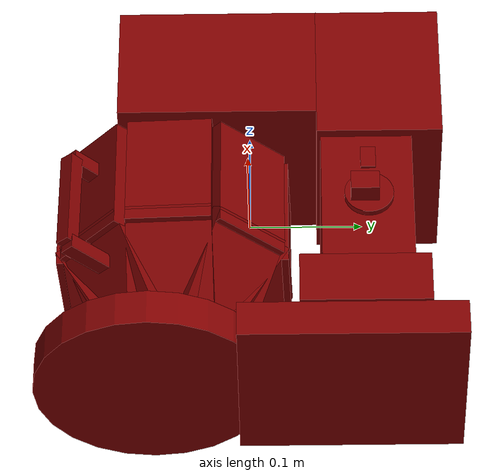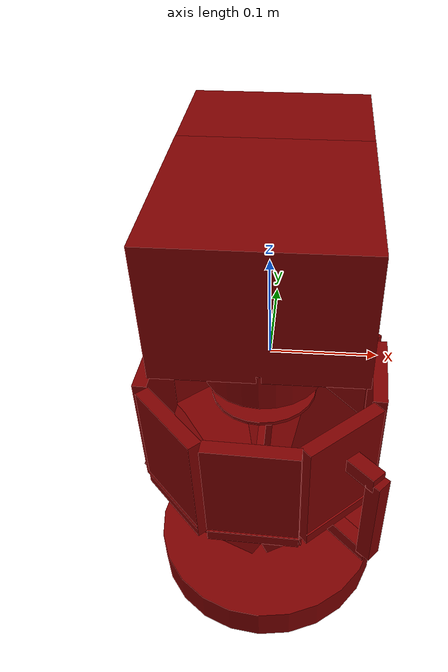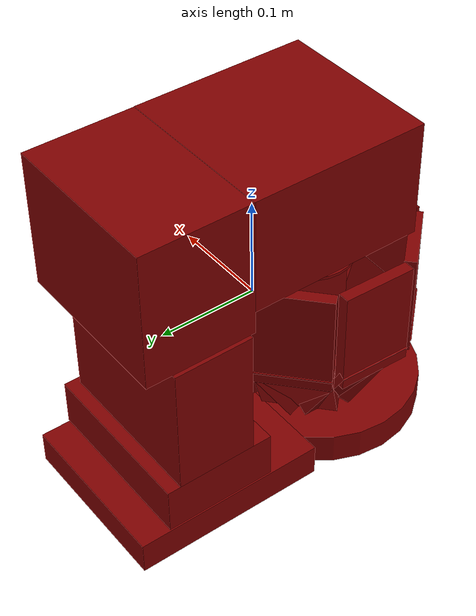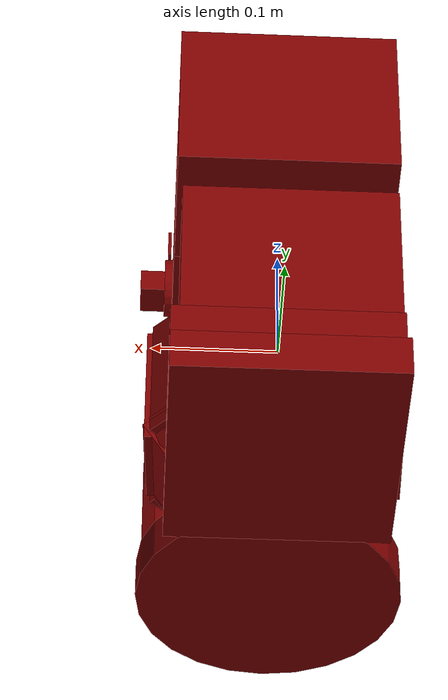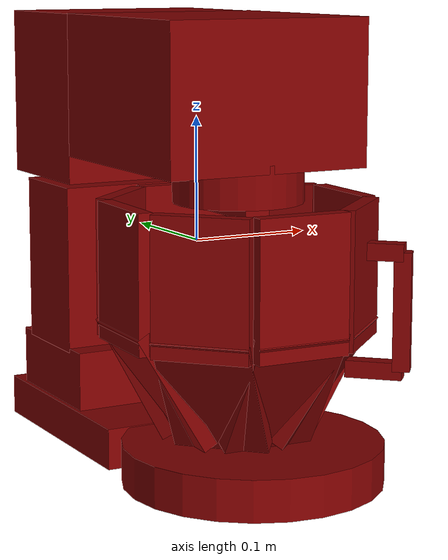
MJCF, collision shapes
<?xml version='1.0' encoding='UTF-8'?>
<mujoco model="model">
  <compiler angle="radian"/>
  <asset>
    <mesh file="visuals/Blade001.obj" name="Blade001_vis"/>
    <mesh file="visuals/Body001.obj" name="Body001_vis"/>
    <mesh file="visuals/Button001.obj" name="Button001_vis"/>
    <mesh file="visuals/Container001.obj" name="Container001_vis"/>
    <mesh file="visuals/Knob001.obj" name="Knob001_vis"/>
    <mesh file="visuals/Lid001.obj" name="Lid001_vis"/>
    <texture file="visuals/T_BC001.png" name="Body001_material" type="2d"/>
    <material name="Body001_material" rgba="1 1 1 1.0" texture="Body001_material" shininess="0.6150577068328857" specular="0.5"/>
    <texture file="visuals/T_BC001.png" name="Button001_material" type="2d"/>
    <material name="Button001_material" rgba="1 1 1 1.0" texture="Button001_material" shininess="0.6150577068328857" specular="0.5"/>
    <texture file="visuals/T_BC001.png" name="Container001_material" type="2d"/>
    <material name="Container001_material" rgba="1 1 1 1.0" texture="Container001_material" shininess="0.6150577068328857" specular="0.5"/>
    <texture file="visuals/T_BC001.png" name="Knob001_material" type="2d"/>
    <material name="Knob001_material" rgba="1 1 1 1.0" texture="Knob001_material" shininess="0.6150577068328857" specular="0.5"/>
    <texture file="visuals/T_BC001.png" name="Lid001_material" type="2d"/>
    <material name="Lid001_material" rgba="1 1 1 1.0" texture="Lid001_material" shininess="0.6150577068328857" specular="0.5"/>
    <texture file="visuals/T_BC001.png" name="Blade001_material" type="2d"/>
    <material name="Blade001_material" rgba="1 1 1 1.0" texture="Blade001_material" shininess="0.6150577068328857" specular="1"/>
  </asset>
  <default>
    <default class="visual">
      <geom conaffinity="0" contype="0" group="1" type="mesh"/>
    </default>
    <default class="collision">
      <geom group="0" rgba="0.5 0 0 0.5"/>
    </default>
    <default class="spawn">
      <geom group="0" rgba="1 1 1 0.5" contype="0" conaffinity="0"/>
      <site group="0" rgba="1 1 1 0.5"/>
    </default>
    <default class="region">
      <geom group="1" conaffinity="0" contype="0" rgba="0 1 0 0"/>
    </default>
  </default>
  <worldbody>
    <body>
      <body name="object">
        <geom mesh="Body001_vis" type="mesh" solimp="0.998 0.998 0.001" solref="0.001 1" density="100" friction="0.95 0.3 0.1" class="visual" material="Body001_material"/>
        <geom class="collision" type="cylinder" pos="0.003460519015789032 -0.0849916860461235 -0.1610846072435379" size="0.10266918689012527 0.016178524121642113" quat="0.7071068286895752 0.0 0.0 0.7071067690849304"/>
        <geom class="collision" type="box" pos="0.0007541850209236145 0.08873350918292999 -0.16065005958080292" size="0.09872075170278549 0.08596987277269363 0.016632359474897385" quat="0.7071068286895752 0.0 0.0 0.7071067690849304"/>
        <geom class="collision" type="box" pos="0.0007541850209236145 0.10066592693328857 -0.11781147867441177" size="0.05685624107718468 0.08596987277269363 0.02410605363547802" quat="0.7071068286895752 0.0 0.0 0.7071067690849304"/>
        <geom class="collision" type="box" pos="-0.002644643187522888 0.10392031073570251 -0.028685398399829865" size="0.0402195043861866 0.08257105201482773 0.06867597997188568" quat="0.7071068286895752 0.0 0.0 0.7071067690849304"/>
        <body name="Button001">
          <joint axis="-1.0 0.0 0.0" pos="0.08683105558156967 0.10489334166049957 0.010110207833349705" limited="true" name="Button001_joint" range="0.0 0.004" type="slide" damping="1" frictionloss="1" armature=".01" stiffness="0.05"/>
          <geom mesh="Button001_vis" type="mesh" solimp="0.998 0.998 0.001" solref="0.001 1" density="100" friction="0.95 0.3 0.1" class="visual" material="Button001_material"/>
          <geom class="collision" type="box" pos="0.08823489397764206 0.1049036830663681 0.00974784791469574" size="0.006625826936215162 0.0011522299610078335 0.010949372313916683" quat="0.7071068286895752 0.0 0.0 0.7071067690849304"/>
        </body>
        <body name="Container001">
          <joint axis="0.0 0.0 1.0" pos="-1.2453834408177045e-08 -0.06627010554075241 -0.05105967074632645" limited="true" name="Container001_joint" range="0.0 0.03" type="slide" damping="1" frictionloss="1" armature=".01" stiffness="0.05"/>
          <geom mesh="Container001_vis" type="mesh" solimp="0.998 0.998 0.001" solref="0.001 1" density="100" friction="0.95 0.3 0.1" class="visual" material="Container001_material"/>
          <geom class="collision" type="box" pos="0.09577890485525131 -0.06873269379138947 -0.010495379567146301" size="0.03732758015394211 0.005964502226561308 0.05343107879161835" quat="0.7229249477386475 0.0 0.0 0.6909265518188477"/>
          <geom class="collision" type="box" pos="0.07019632309675217 -0.06757412850856781 -0.09441077709197998" size="0.03732758015394211 0.005964502226561308 0.05343107879161835" quat="0.6964244842529297 0.19394183158874512 0.1853574812412262 0.6655990481376648"/>
          <geom class="collision" type="box" pos="0.050625551491975784 -0.017625704407691956 -0.09441077709197998" size="0.03732758015394211 0.005964501760900021 0.05343107879161835" quat="0.38930678367614746 0.10841494798660278 0.24539148807525635 0.8811750411987305"/>
          <geom class="collision" type="box" pos="0.06955821067094803 -0.00038145482540130615 -0.010495379567146301" size="0.03732758015394211 0.005964502226561308 0.05343107879161835" quat="0.40412062406539917 0.0 0.0 0.9147056937217712"/>
          <geom class="collision" type="box" pos="0.0009639021009206772 0.029535599052906036 -0.010495379567146301" size="0.03732758015394211 0.005964502226561308 0.05343107879161835" quat="0.014805447310209274 0.0 0.0 0.9998903870582581"/>
          <geom class="collision" type="box" pos="0.00020568561740219593 0.003938035108149052 -0.09441077709197998" size="0.03732758015394211 0.005964502226561308 0.05343107879161835" quat="0.014262717217206955 0.003971923608332872 0.26824429631233215 0.9632371664047241"/>
          <geom class="collision" type="box" pos="-0.04840046539902687 -0.01541125401854515 -0.09441077709197998" size="0.03732758015394211 0.005964502226561308 0.05343107879161835" quat="0.3456428349018097 0.0962553396821022 -0.2504110634326935 -0.8991997838020325"/>
          <geom class="collision" type="box" pos="-0.06555350869894028 0.0036040879786014557 -0.010495379567146301" size="0.03732758015394211 0.005964502226561308 0.05343107879161835" quat="0.3587951958179474 0.0 -0.0 -0.9334163069725037"/>
          <geom class="collision" type="box" pos="-0.09579715132713318 -0.0646655336022377 -0.010495379567146301" size="0.03732758015394211 0.005964502226561308 0.05343107879161835" quat="0.6941573023796082 0.0 -0.0 -0.7198233604431152"/>
          <geom class="collision" type="box" pos="-0.07020523399114609 -0.06559489667415619 -0.09441077709197998" size="0.03732757642865181 0.005964502226561308 0.05343107879161835" quat="0.6687114238739014 0.18622416257858276 -0.1931096762418747 -0.6934365630149841"/>
          <geom class="collision" type="box" pos="-0.04966125637292862 -0.11589860916137695 -0.09441077709197998" size="0.03732758015394211 0.005964502226561308 0.05343107879161835" quat="0.8849525451660156 0.24644345045089722 -0.10600192099809647 -0.3806418180465698"/>
          <geom class="collision" type="box" pos="-0.06825187802314758 -0.13351109623908997 -0.010495379567146301" size="0.03732758015394211 0.005964502226561308 0.05343107879161835" quat="0.9186269044876099 0.0 -0.0 -0.3951260447502136"/>
          <geom class="collision" type="box" pos="-0.0016660839319229126 -0.16206619143486023 -0.010495379567146301" size="0.03732758015394211 0.005964502226561308 0.05343107879161835" quat="0.9998294115066528 0.0 -0.0 -0.018469497561454773"/>
          <geom class="collision" type="box" pos="-0.0007202774286270142 -0.1364748775959015 -0.09441076964139938" size="0.03732758015394211 0.005964502226561308 0.05343107879161835" quat="0.9631783962249756 0.2682279348373413 -0.00495489127933979 -0.017792504280805588"/>
          <geom class="collision" type="box" pos="0.048427045345306396 -0.11710363626480103 -0.09441076964139938" size="0.03732758015394211 0.005964502226561308 0.05343107879161835" quat="0.8991093635559082 0.2503858208656311 0.09632080048322678 0.345878005027771"/>
          <geom class="collision" type="box" pos="0.0655900239944458 -0.13611000776290894 -0.010495379567146301" size="0.03732758015394211 0.005964502226561308 0.05343107879161835" quat="0.9333224296569824 0.0 0.0 0.35903939604759216"/>
          <geom class="collision" type="box" pos="0.08426949381828308 -0.14564931392669678 0.0063903117552399635" size="0.0066782101057469845 0.01395743153989315 0.006678210571408272" quat="0.9218466281890869 0.0 0.0 0.38755494356155396"/>
          <geom class="collision" type="box" pos="0.09352481365203857 -0.15466591715812683 -0.03930659592151642" size="0.006678210571408272 0.04591038078069687 0.006678210571408272" quat="0.6440426111221313 0.6409761309623718 0.2982119619846344 0.29228127002716064"/>
          <geom class="collision" type="box" pos="0.07861623167991638 -0.1401141732931137 -0.08530610799789429" size="0.0066782101057469845 0.02186926268041134 0.006678210571408272" quat="0.9218466281890869 0.0 0.0 0.38755494356155396"/>
        </body>
        <body name="Knob001">
          <joint axis="-1.0 0.0 0.0" pos="0.09186919778585434 0.10499929636716843 -0.03084498643875122" limited="true" name="Knob001_joint" range="0.0 5.235987755982989" type="hinge" damping="0.05" armature="0.001"/>
          <geom mesh="Knob001_vis" type="mesh" solimp="0.998 0.998 0.001" solref="0.001 1" density="100" friction="0.95 0.3 0.1" class="visual" material="Knob001_material"/>
          <geom class="collision" type="cylinder" pos="0.08847013860940933 0.10506120324134827 -0.030731894075870514" size="0.02145657129585743 0.002870349446311593" quat="0.5000000596046448 0.5 0.4999999701976776 0.5"/>
          <geom class="collision" type="box" pos="0.10003703087568283 0.10141026228666306 -0.030731894075870514" size="0.009205687791109085 0.012417934834957123 0.009205687791109085" quat="1.0 0.0 0.0 0.0"/>
        </body>
        <body name="Lid001">
          <joint axis="-1.0 0.0 0.0" pos="1.0754204637919429e-08 0.14244376122951508 0.04130365327000618" limited="true" name="Lid001_joint" range="0.0 1.5707963267948966" type="hinge" damping="1" frictionloss="1" armature=".01" stiffness="0.05"/>
          <geom mesh="Lid001_vis" type="mesh" solimp="0.998 0.998 0.001" solref="0.001 1" density="100" friction="0.95 0.3 0.1" class="visual" material="Lid001_material"/>
          <geom class="collision" type="box" pos="0.00042625516653060913 -0.06595133244991302 0.036875221878290176" size="0.029734713956713676 0.010289303958415985 0.007034998387098312" quat="0.7071068286895752 0.0 0.0 0.7071067690849304"/>
          <geom class="collision" type="box" pos="-8.922815322875977e-05 0.11617272347211838 0.11218898743391037" size="0.05562294274568558 0.08439835906028748 0.06867597997188568" quat="0.7071068286895752 0.0 0.0 0.7071067690849304"/>
          <geom class="collision" type="cylinder" pos="0.00039145350456237793 -0.06626210361719131 0.056532151997089386" size="0.05091654881834984 0.0164863932877779" quat="0.7071068286895752 0.0 0.0 0.7071067690849304"/>
          <geom class="collision" type="box" pos="-8.924119174480438e-05 -0.027804773300886154 0.12384510040283203" size="0.08912068605422974 0.08439835906028748 0.05735771358013153" quat="0.7071068286895752 0.0 0.0 0.7071067690849304"/>
          <body name="Blade001">
            <joint axis="0.0 0.0 1.0" pos="-1.7672549802227877e-05 -0.06669911742210388 -0.026015812531113625" limited="false" name="Blade001_joint" range="0 360" type="hinge" damping="1" frictionloss="1" armature=".01" stiffness="0.05"/>
            <geom mesh="Blade001_vis" type="mesh" solimp="0.998 0.998 0.001" solref="0.001 1" density="100" friction="0.95 0.3 0.1" class="visual" material="Blade001_material"/>
            <geom class="collision" type="cylinder" pos="-8.93324613571167e-06 -0.06668905913829803 0.016672706231474876" size="0.044408053159713745 0.0015562321059405804" quat="0.7071068286895752 0.0 0.0 0.7071067690849304"/>
            <geom class="collision" type="cylinder" pos="-8.93324613571167e-06 -0.06668905913829803 0.010099751874804497" size="0.006662769243121147 0.022094683721661568" quat="0.7071068286895752 0.0 0.0 0.7071067690849304"/>
            <geom class="collision" type="box" pos="5.398690700531006e-05 -0.06601007282733917 -0.04471845179796219" size="0.04669037461280823 0.0030582635663449764 0.037796273827552795" quat="0.7071068286895752 0.0 0.0 0.7071067690849304"/>
          </body>
        </body>
        <geom class="region" name="reg_main" type="box" pos="1.564621925354004e-05 0.0 7.450580596923828e-09" size="0.09894803166389465 0.18722178041934967 0.17763414978981018"/>
      </body>
    </body>
  </worldbody>
  <actuator>
    <motor name="Button001_joint_actuator" joint="Button001_joint" gear="0.5"/>
    <motor name="Container001_joint_actuator" joint="Container001_joint" gear="10"/>
    <motor name="Knob001_joint_actuator" joint="Knob001_joint" gear="10"/>
    <motor name="Lid001_joint_actuator" joint="Lid001_joint" gear="10"/>
    <motor name="Blade001_joint_actuator" joint="Blade001_joint" gear="10"/>
  </actuator>
</mujoco>
